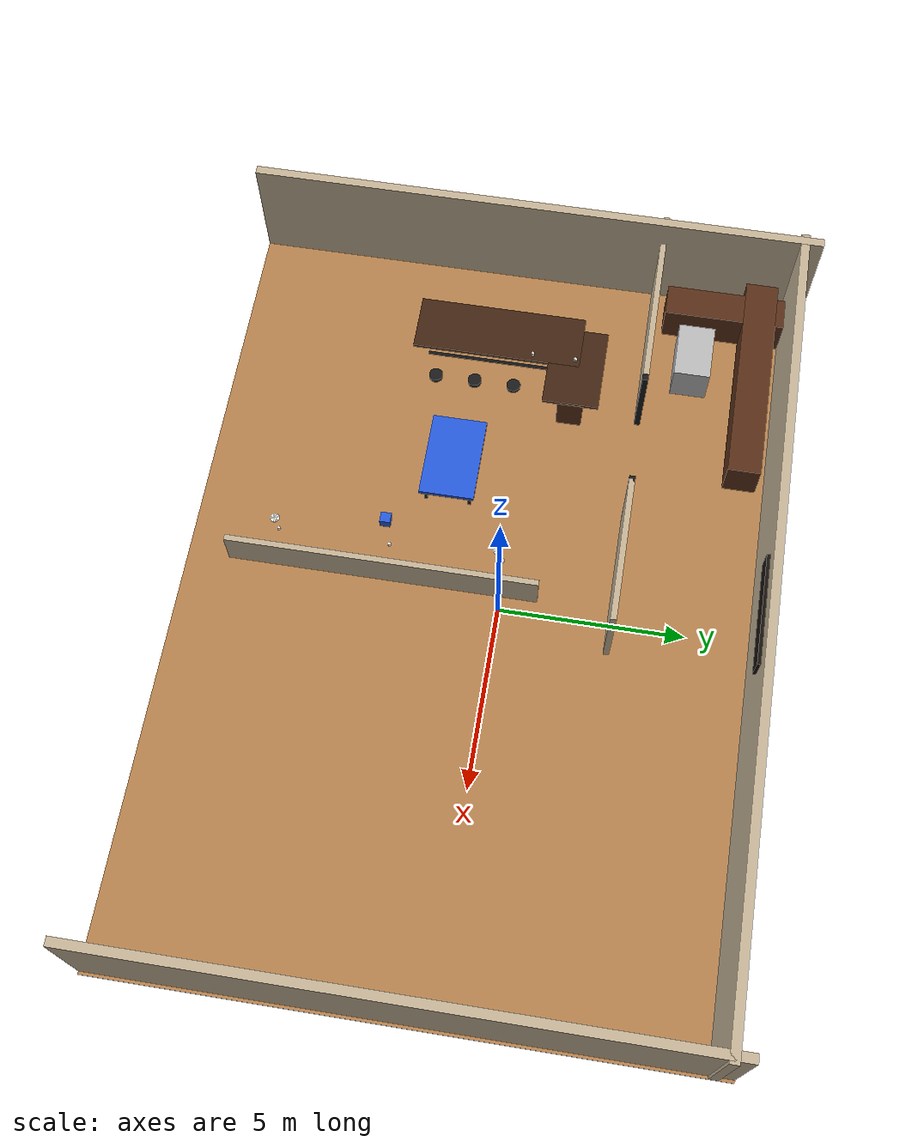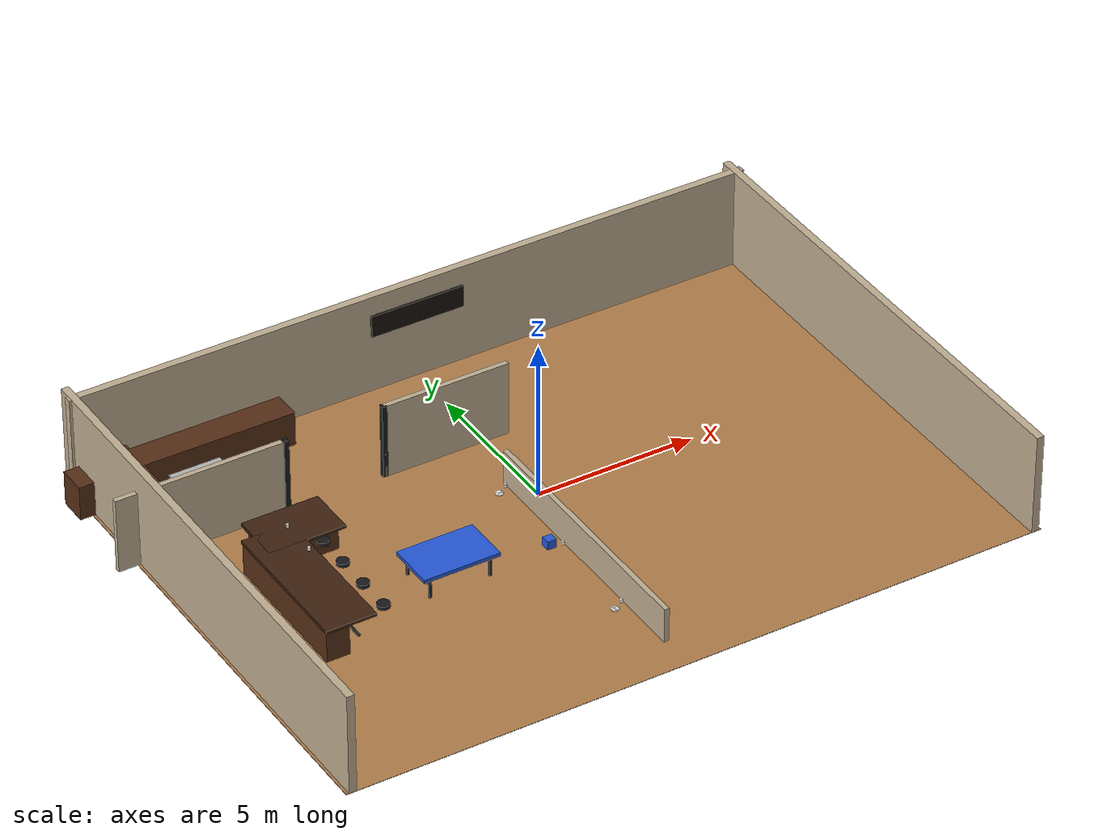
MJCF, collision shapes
<mujoco model="basic_restaurant_open">
  <compiler angle="degree" coordinate="local" meshdir="../scene_builder/scenes/stylish_diner_preview/assets/booth/meshes" texturedir="../scene_builder/scenes/stylish_diner_preview/assets/booth/textures"/>

  <option timestep="0.002" gravity="0 0 -9.81"/>

  <visual>
    <headlight diffuse="0.65 0.65 0.65" ambient="0.40 0.36 0.32"/>
    <rgba haze="0.10 0.10 0.11 1"/>
  </visual>

  <asset>
    <texture type="skybox" builtin="gradient" rgb1="0.35 0.38 0.42" rgb2="0.18 0.17 0.16" width="512" height="3072"/>
    <!-- Floor albedo: procedural tileable PNG in assets/booth/textures/ (see g1_minimal_sim/scenes/scene_builder/tools/gen_stylish_diner_floor_texture.py) -->
    <texture name="wood" type="2d" file="stylish_diner_floor_planks.png"/>
    <material name="floor_wood" texture="wood" texrepeat="12.5 9.1" reflectance="0" specular="0" shininess="1"/>
    <material name="wall" rgba="0.76 0.69 0.58 1"/>
    <material name="dark_metal" rgba="0.10 0.10 0.10 1"/>
    <material name="bar_wood" rgba="0.34 0.18 0.09 1"/>
    <material name="booth_red" rgba="0.38 0.08 0.05 1"/>
    <material name="table_top" rgba="0.25 0.14 0.07 1"/>
    <material name="felt" rgba="0.05 0.32 0.18 1"/>
    <material name="blue_target" rgba="0.15 0.35 0.85 1"/>
    <material name="light_gray" rgba="0.72 0.72 0.72 1"/>
    <material name="ceramic_white" rgba="0.95 0.95 0.93 1"/>

    <!-- Imported booth (sb_*): shared across booth_inst_0..2 — load once, draw thrice -->
    <mesh name="sb_booth_mesh00" file="sb_booth_m00.obj"/>
    <texture name="sb_booth_tex00" type="2d" file="sb_booth_t00.png"/>
    <material name="sb_booth_mat00" texture="sb_booth_tex00" reflectance="0.5" specular="0.5" shininess="0.5"/>
    <mesh name="sb_booth_mesh01" file="sb_booth_m01.obj"/>
    <texture name="sb_booth_tex01" type="2d" file="sb_booth_t01.png"/>
    <material name="sb_booth_mat01" texture="sb_booth_tex01" reflectance="0.5" specular="0.5" shininess="0.5"/>
    <mesh name="sb_booth_mesh02" file="sb_booth_m02.obj"/>
    <texture name="sb_booth_tex02" type="2d" file="sb_booth_t02.png"/>
    <material name="sb_booth_mat02" texture="sb_booth_tex02" reflectance="0.5" specular="0.5" shininess="0.5"/>
    <mesh name="sb_booth_mesh03" file="sb_booth_m03.obj"/>
    <texture name="sb_booth_tex03" type="2d" file="sb_booth_t03.png"/>
    <material name="sb_booth_mat03" texture="sb_booth_tex03" reflectance="0.5" specular="0.5" shininess="0.5"/>
    <mesh name="sb_booth_mesh04" file="sb_booth_m04.obj"/>
    <texture name="sb_booth_tex04" type="2d" file="sb_booth_t04.png"/>
    <material name="sb_booth_mat04" texture="sb_booth_tex04" reflectance="0.5" specular="0.5" shininess="0.5"/>
    <mesh name="sb_booth_mesh05" file="sb_booth_m05.obj"/>
    <texture name="sb_booth_tex05" type="2d" file="sb_booth_t05.png"/>
    <material name="sb_booth_mat05" texture="sb_booth_tex05" reflectance="0.5" specular="0.5" shininess="0.5"/>
    <mesh name="sb_booth_mesh06" file="sb_booth_m06.obj"/>
    <texture name="sb_booth_tex06" type="2d" file="sb_booth_t06.png"/>
    <material name="sb_booth_mat06" texture="sb_booth_tex06" reflectance="0.5" specular="0.5" shininess="0.5"/>
    <mesh name="sb_booth_mesh07" file="sb_booth_m07.obj"/>
    <texture name="sb_booth_tex07" type="2d" file="sb_booth_t07.png"/>
    <material name="sb_booth_mat07" texture="sb_booth_tex07" reflectance="0.5" specular="0.5" shininess="0.5"/>
  </asset>

  <worldbody>
    <geom name="floor" type="box" pos="0 -0.6096 -0.01" size="11 7.9146 0.01" material="floor_wood"/>

    <geom name="back_wall"  type="box" pos="0 6.8 1.6"  size="11 0.12 1.6" material="wall"/>
    <geom name="left_wall"  type="box" pos="-10.8 -0.6096 1.6" size="0.12 7.9146 1.6" material="wall"/>
    <geom name="right_wall" type="box" pos="10.8 -0.6096 1.6" size="0.12 7.9146 1.6" material="wall"/>
    <geom name="sign_board" type="box" pos="0 6.65 2.25" size="1.5 0.06 0.35" rgba="0.08 0.06 0.04 1"/>

    <geom name="bar_long" type="box" pos="-8.35 -1.167 0.50" size="0.36 2.30 0.50" material="bar_wood"/>
    <geom name="bar_back" type="box" pos="-7.15 1.083 0.50" size="1.20 0.35 0.50" material="bar_wood"/>
    <geom name="bar_top_long" type="box" pos="-7.95 -1.167 1.03" size="0.78 2.34 0.05" material="table_top"/>
    <geom name="bar_top_back" type="box" pos="-7.15 1.083 1.03" size="1.20 0.78 0.05" material="table_top"/>
    <geom name="bar_kick_rail" type="capsule" fromto="-7.52 -3.117 0.22 -7.52 0.783 0.22" size="0.045" material="dark_metal"/>
    <geom name="stool_1" type="cylinder" pos="-6.55 -2.767 0.62" size="0.19 0.06" material="dark_metal"/>
    <geom name="stool_2" type="cylinder" pos="-6.55 -1.667 0.62" size="0.19 0.06" material="dark_metal"/>
    <geom name="stool_3" type="cylinder" pos="-6.55 -0.567 0.62" size="0.19 0.06" material="dark_metal"/>
    <geom name="stool_4" type="cylinder" pos="-6.55 0.533 0.62" size="0.19 0.06" material="dark_metal"/>

    <!-- big central table removed — replaced by booth_inst_* row below -->
    <geom name="booth_divider" type="box" pos="-0.4692 -3.2008 0.55" size="0.08 4.2 0.55" material="wall"/>
    <!-- Booth row: ~4 ft further from kitchen (−Y) than prior layout -->
    <body name="booth_inst_0" pos="-1.2192 -0.3056 0.42" euler="0 0 0">
      <geom name="booth0_g00" type="mesh" mesh="sb_booth_mesh00" material="sb_booth_mat00" contype="0" conaffinity="0"/>
      <geom name="booth0_g01" type="mesh" mesh="sb_booth_mesh01" material="sb_booth_mat01" contype="0" conaffinity="0"/>
      <geom name="booth0_g02" type="mesh" mesh="sb_booth_mesh02" material="sb_booth_mat02" contype="0" conaffinity="0"/>
      <geom name="booth0_g03" type="mesh" mesh="sb_booth_mesh03" material="sb_booth_mat03" contype="0" conaffinity="0"/>
      <geom name="booth0_g04" type="mesh" mesh="sb_booth_mesh04" material="sb_booth_mat04" contype="0" conaffinity="0"/>
      <geom name="booth0_g05" type="mesh" mesh="sb_booth_mesh05" material="sb_booth_mat05" contype="0" conaffinity="0"/>
      <geom name="booth0_g06" type="mesh" mesh="sb_booth_mesh06" material="sb_booth_mat06" contype="0" conaffinity="0"/>
      <geom name="booth0_g07" type="mesh" mesh="sb_booth_mesh07" material="sb_booth_mat07" contype="0" conaffinity="0"/>
    </body>
    <body name="booth_inst_1" pos="-1.2192 -3.2008 0.42" euler="0 0 0">
      <geom name="booth1_g00" type="mesh" mesh="sb_booth_mesh00" material="sb_booth_mat00" contype="0" conaffinity="0"/>
      <geom name="booth1_g01" type="mesh" mesh="sb_booth_mesh01" material="sb_booth_mat01" contype="0" conaffinity="0"/>
      <geom name="booth1_g02" type="mesh" mesh="sb_booth_mesh02" material="sb_booth_mat02" contype="0" conaffinity="0"/>
      <geom name="booth1_g03" type="mesh" mesh="sb_booth_mesh03" material="sb_booth_mat03" contype="0" conaffinity="0"/>
      <geom name="booth1_g04" type="mesh" mesh="sb_booth_mesh04" material="sb_booth_mat04" contype="0" conaffinity="0"/>
      <geom name="booth1_g05" type="mesh" mesh="sb_booth_mesh05" material="sb_booth_mat05" contype="0" conaffinity="0"/>
      <geom name="booth1_g06" type="mesh" mesh="sb_booth_mesh06" material="sb_booth_mat06" contype="0" conaffinity="0"/>
      <geom name="booth1_g07" type="mesh" mesh="sb_booth_mesh07" material="sb_booth_mat07" contype="0" conaffinity="0"/>
    </body>
    <body name="booth_inst_2" pos="-1.2192 -6.096 0.42" euler="0 0 0">
      <geom name="booth2_g00" type="mesh" mesh="sb_booth_mesh00" material="sb_booth_mat00" contype="0" conaffinity="0"/>
      <geom name="booth2_g01" type="mesh" mesh="sb_booth_mesh01" material="sb_booth_mat01" contype="0" conaffinity="0"/>
      <geom name="booth2_g02" type="mesh" mesh="sb_booth_mesh02" material="sb_booth_mat02" contype="0" conaffinity="0"/>
      <geom name="booth2_g03" type="mesh" mesh="sb_booth_mesh03" material="sb_booth_mat03" contype="0" conaffinity="0"/>
      <geom name="booth2_g04" type="mesh" mesh="sb_booth_mesh04" material="sb_booth_mat04" contype="0" conaffinity="0"/>
      <geom name="booth2_g05" type="mesh" mesh="sb_booth_mesh05" material="sb_booth_mat05" contype="0" conaffinity="0"/>
      <geom name="booth2_g06" type="mesh" mesh="sb_booth_mesh06" material="sb_booth_mat06" contype="0" conaffinity="0"/>
      <geom name="booth2_g07" type="mesh" mesh="sb_booth_mesh07" material="sb_booth_mat07" contype="0" conaffinity="0"/>
    </body>

    <geom name="kitchen_divider_left"  type="box" pos="-9.0 3.0 1.2" size="2.6 0.08 1.2" material="wall"/>
    <geom name="kitchen_divider_right" type="box" pos="-1.2 3.0 1.2" size="2.0 0.08 1.2" material="wall"/>
    <geom name="kitchen_post_left"  type="box" pos="-6.3 3.0 1.2" size="0.08 0.08 1.2" material="dark_metal"/>
    <geom name="kitchen_post_right" type="box" pos="-3.2 3.0 1.2" size="0.08 0.08 1.2" material="dark_metal"/>
    <geom name="kitchen_counter_back" type="box" pos="-8.0 6.0 0.55" size="3.4 0.45 0.55" material="bar_wood"/>
    <geom name="kitchen_counter_left" type="box" pos="-9.8 5.2 0.55" size="0.45 1.85 0.55" material="bar_wood"/>
    <geom name="kitchen_island" type="box" pos="-8.2 4.3 0.55" size="0.8 0.5 0.55" material="light_gray"/>

    <geom name="blue_target_table_top" type="box" pos="-3.98 -1.85 0.72" size="1.2 0.75 0.06" material="blue_target"/>
    <geom name="blue_target_leg_1" type="box" pos="-4.93 -2.45 0.36" size="0.04 0.04 0.36" material="dark_metal"/>
    <geom name="blue_target_leg_2" type="box" pos="-3.03 -2.45 0.36" size="0.04 0.04 0.36" material="dark_metal"/>
    <geom name="blue_target_leg_3" type="box" pos="-4.93 -1.25 0.36" size="0.04 0.04 0.36" material="dark_metal"/>
    <geom name="blue_target_leg_4" type="box" pos="-3.03 -1.25 0.36" size="0.04 0.04 0.36" material="dark_metal"/>

    <!-- Cube on middle booth row -->
    <body name="target_block" pos="-1.6392 -3.2692 1.12">
      <freejoint/>
      <geom name="target_block_geom" type="box" size="0.14 0.14 0.14" material="blue_target"
            density="5" friction="3.0 0.1 0.005"/>
    </body>

    <!-- Plates / cups (same geometry as g1_gear_wbc_stylish_diner): booth tables, bar cups, blue prep table -->
    <body name="pv_plate_booth_a" pos="-1.3992 -0.2192 0.732">
      <freejoint/>
      <geom name="pv_plate_ba_base" type="cylinder" size="0.11 0.008" material="ceramic_white"
            density="350" friction="0.9 0.02 0.002"/>
      <geom name="pv_plate_ba_rim" type="cylinder" pos="0 0 0.004" size="0.125 0.004" material="ceramic_white"
            density="350" friction="0.9 0.02 0.002"/>
    </body>
    <body name="pv_cup_booth_a" pos="-1.0992 -0.0392 0.77">
      <joint type="free" damping="0.35"/>
      <geom name="pv_cup_ba_body" type="cylinder" size="0.042 0.050" material="ceramic_white"
            density="1400" friction="1.4 0.06 0.006" margin="0.002"
            solref="0.02 1" solimp="0.95 0.99 0.001"/>
      <geom name="pv_cup_ba_base" type="cylinder" pos="0 0 -0.042" size="0.028 0.008" material="ceramic_white"
            density="1400" contype="0" conaffinity="0"/>
      <geom name="pv_cup_ba_handle" type="capsule" fromto="0.045 0 0.010 0.045 0 -0.030" size="0.007"
            material="ceramic_white" density="1400" friction="0.9 0.02 0.002" contype="0" conaffinity="0"/>
    </body>
    <body name="pv_cup_booth_b" pos="-1.0992 -3.0892 0.77">
      <joint type="free" damping="0.35"/>
      <geom name="pv_cup_bb_body" type="cylinder" size="0.042 0.050" material="ceramic_white"
            density="1400" friction="1.4 0.06 0.006" margin="0.002"
            solref="0.02 1" solimp="0.95 0.99 0.001"/>
      <geom name="pv_cup_bb_base" type="cylinder" pos="0 0 -0.042" size="0.028 0.008" material="ceramic_white"
            density="1400" contype="0" conaffinity="0"/>
      <geom name="pv_cup_bb_handle" type="capsule" fromto="0.045 0 0.010 0.045 0 -0.030" size="0.007"
            material="ceramic_white" density="1400" friction="0.9 0.02 0.002" contype="0" conaffinity="0"/>
    </body>
    <body name="pv_plate_booth_c" pos="-1.3992 -6.2692 0.732">
      <freejoint/>
      <geom name="pv_plate_bc_base" type="cylinder" size="0.11 0.008" material="ceramic_white"
            density="350" friction="0.9 0.02 0.002"/>
      <geom name="pv_plate_bc_rim" type="cylinder" pos="0 0 0.004" size="0.125 0.004" material="ceramic_white"
            density="350" friction="0.9 0.02 0.002"/>
    </body>
    <body name="pv_cup_booth_c" pos="-1.0992 -6.0892 0.77">
      <joint type="free" damping="0.35"/>
      <geom name="pv_cup_bc_body" type="cylinder" size="0.042 0.050" material="ceramic_white"
            density="1400" friction="1.4 0.06 0.006" margin="0.002"
            solref="0.02 1" solimp="0.95 0.99 0.001"/>
      <geom name="pv_cup_bc_base" type="cylinder" pos="0 0 -0.042" size="0.028 0.008" material="ceramic_white"
            density="1400" contype="0" conaffinity="0"/>
      <geom name="pv_cup_bc_handle" type="capsule" fromto="0.045 0 0.010 0.045 0 -0.030" size="0.007"
            material="ceramic_white" density="1400" friction="0.9 0.02 0.002" contype="0" conaffinity="0"/>
    </body>
    <body name="pv_cup_bar_1" pos="-7.35 -0.15 1.13">
      <joint type="free" damping="0.35"/>
      <geom name="pv_cup_b1_body" type="cylinder" size="0.042 0.050" material="ceramic_white"
            density="1400" friction="1.4 0.06 0.006" margin="0.002"
            solref="0.02 1" solimp="0.95 0.99 0.001"/>
      <geom name="pv_cup_b1_base" type="cylinder" pos="0 0 -0.042" size="0.028 0.008" material="ceramic_white"
            density="1400" contype="0" conaffinity="0"/>
      <geom name="pv_cup_b1_handle" type="capsule" fromto="0.045 0 0.010 0.045 0 -0.030" size="0.007"
            material="ceramic_white" density="1400" friction="0.9 0.02 0.002" contype="0" conaffinity="0"/>
    </body>
    <body name="pv_cup_bar_2" pos="-7.35 1.05 1.13">
      <joint type="free" damping="0.35"/>
      <geom name="pv_cup_b2_body" type="cylinder" size="0.042 0.050" material="ceramic_white"
            density="1400" friction="1.4 0.06 0.006" margin="0.002"
            solref="0.02 1" solimp="0.95 0.99 0.001"/>
      <geom name="pv_cup_b2_base" type="cylinder" pos="0 0 -0.042" size="0.028 0.008" material="ceramic_white"
            density="1400" contype="0" conaffinity="0"/>
      <geom name="pv_cup_b2_handle" type="capsule" fromto="0.045 0 0.010 0.045 0 -0.030" size="0.007"
            material="ceramic_white" density="1400" friction="0.9 0.02 0.002" contype="0" conaffinity="0"/>
    </body>
    <light name="light_1" pos="-5.0 0.0 3.8" dir="0 0 -1" diffuse="0.88 0.70 0.42" specular="0.03 0.025 0.02"/>
    <light name="light_2" pos="0.0 0.5 3.8"  dir="0 0 -1" diffuse="0.88 0.70 0.42" specular="0.03 0.025 0.02"/>
    <light name="light_3" pos="5.5 1.2 3.8"  dir="0 0 -1" diffuse="0.88 0.70 0.42" specular="0.03 0.025 0.02"/>
    <light name="light_4" pos="-6.0 5.0 3.8" dir="0 0 -1" diffuse="0.82 0.82 0.90" specular="0.04 0.04 0.05"/>
  </worldbody>
</mujoco>
